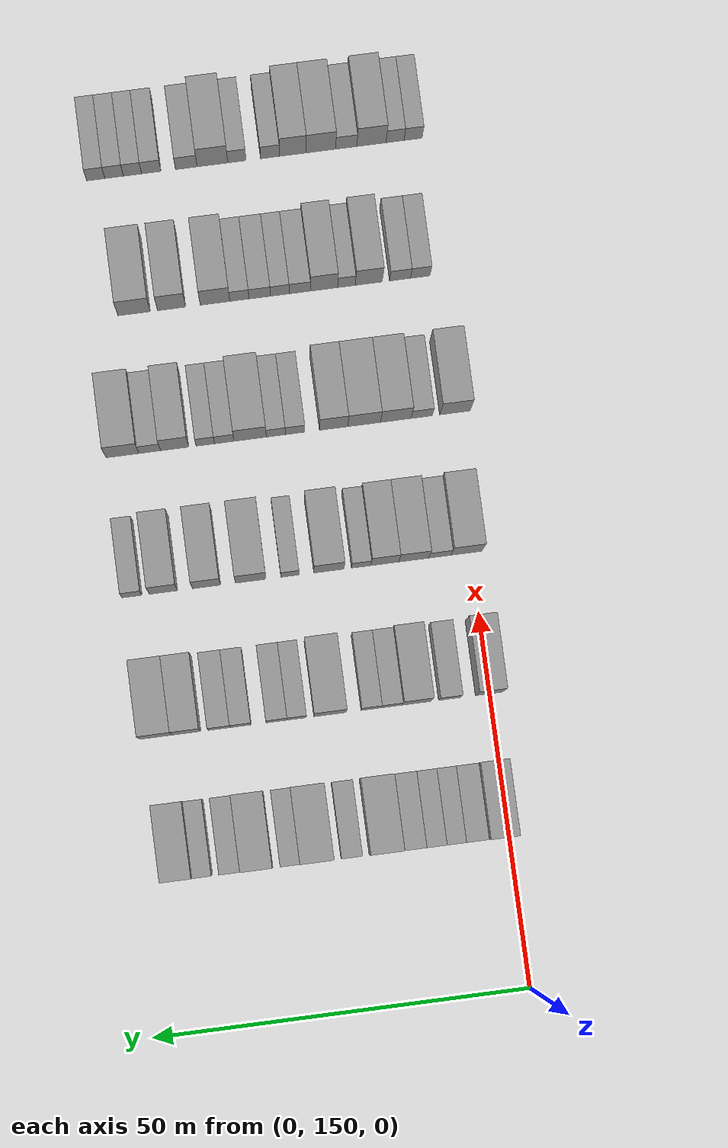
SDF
<sdf version="1.6">
 <world name="default">
  <model name="building_127">
   <static>1</static>
   <pose>25.0000 151.1794 0 0.000000 0.000000 0.000000</pose>
   <link name="link">
    <pose>0 0 4.50 0 0 0</pose>
    <collision name="collision"><geometry><box><size>10.0000 3.8335 9.0000</size></box></geometry></collision>
    <visual name="visual">
     <cast_shadows>0</cast_shadows>
     <geometry><box><size>10.0000 3.8335 9.0000</size></box></geometry>
     <material>
      <script>
       <uri>model://grey_wall/materials/scripts</uri>
       <uri>model://grey_wall/materials/textures</uri>
       <name>vrc/grey_wall</name>
      </script>
     </material>
    </visual>
   </link>
  </model>
  <model name="building_128">
   <static>1</static>
   <pose>25.0000 154.5914 0 0.000000 0.000000 0.000000</pose>
   <link name="link">
    <pose>0 0 3.00 0 0 0</pose>
    <collision name="collision"><geometry><box><size>10.0000 2.9905 6.0000</size></box></geometry></collision>
    <visual name="visual">
     <cast_shadows>0</cast_shadows>
     <geometry><box><size>10.0000 2.9905 6.0000</size></box></geometry>
     <material>
      <script>
       <uri>model://grey_wall/materials/scripts</uri>
       <uri>model://grey_wall/materials/textures</uri>
       <name>vrc/grey_wall</name>
      </script>
     </material>
    </visual>
   </link>
  </model>
  <model name="building_129">
   <static>1</static>
   <pose>25.0000 157.3601 0 0.000000 0.000000 0.000000</pose>
   <link name="link">
    <pose>0 0 3.00 0 0 0</pose>
    <collision name="collision"><geometry><box><size>10.0000 2.5469 6.0000</size></box></geometry></collision>
    <visual name="visual">
     <cast_shadows>0</cast_shadows>
     <geometry><box><size>10.0000 2.5469 6.0000</size></box></geometry>
     <material>
      <script>
       <uri>model://grey_wall/materials/scripts</uri>
       <uri>model://grey_wall/materials/textures</uri>
       <name>vrc/grey_wall</name>
      </script>
     </material>
    </visual>
   </link>
  </model>
  <model name="building_130">
   <static>1</static>
   <pose>25.0000 159.9580 0 0.000000 0.000000 0.000000</pose>
   <link name="link">
    <pose>0 0 3.00 0 0 0</pose>
    <collision name="collision"><geometry><box><size>10.0000 2.6490 6.0000</size></box></geometry></collision>
    <visual name="visual">
     <cast_shadows>0</cast_shadows>
     <geometry><box><size>10.0000 2.6490 6.0000</size></box></geometry>
     <material>
      <script>
       <uri>model://grey_wall/materials/scripts</uri>
       <uri>model://grey_wall/materials/textures</uri>
       <name>vrc/grey_wall</name>
      </script>
     </material>
    </visual>
   </link>
  </model>
  <model name="building_131">
   <static>1</static>
   <pose>25.0000 162.7813 0 0.000000 0.000000 0.000000</pose>
   <link name="link">
    <pose>0 0 3.00 0 0 0</pose>
    <collision name="collision"><geometry><box><size>10.0000 2.9976 6.0000</size></box></geometry></collision>
    <visual name="visual">
     <cast_shadows>0</cast_shadows>
     <geometry><box><size>10.0000 2.9976 6.0000</size></box></geometry>
     <material>
      <script>
       <uri>model://grey_wall/materials/scripts</uri>
       <uri>model://grey_wall/materials/textures</uri>
       <name>vrc/grey_wall</name>
      </script>
     </material>
    </visual>
   </link>
  </model>
  <model name="building_132">
   <static>1</static>
   <pose>25.0000 166.4922 0 0.000000 0.000000 0.000000</pose>
   <link name="link">
    <pose>0 0 4.50 0 0 0</pose>
    <collision name="collision"><geometry><box><size>10.0000 4.4241 9.0000</size></box></geometry></collision>
    <visual name="visual">
     <cast_shadows>0</cast_shadows>
     <geometry><box><size>10.0000 4.4241 9.0000</size></box></geometry>
     <material>
      <script>
       <uri>model://grey_wall/materials/scripts</uri>
       <uri>model://grey_wall/materials/textures</uri>
       <name>vrc/grey_wall</name>
      </script>
     </material>
    </visual>
   </link>
  </model>
  <model name="building_133">
   <static>1</static>
   <pose>25.0000 171.0801 0 0.000000 0.000000 0.000000</pose>
   <link name="link">
    <pose>0 0 3.00 0 0 0</pose>
    <collision name="collision"><geometry><box><size>10.0000 2.7517 6.0000</size></box></geometry></collision>
    <visual name="visual">
     <cast_shadows>0</cast_shadows>
     <geometry><box><size>10.0000 2.7517 6.0000</size></box></geometry>
     <material>
      <script>
       <uri>model://grey_wall/materials/scripts</uri>
       <uri>model://grey_wall/materials/textures</uri>
       <name>vrc/grey_wall</name>
      </script>
     </material>
    </visual>
   </link>
  </model>
  <model name="building_134">
   <static>1</static>
   <pose>25.0000 175.6868 0 0.000000 0.000000 0.000000</pose>
   <link name="link">
    <pose>0 0 4.50 0 0 0</pose>
    <collision name="collision"><geometry><box><size>10.0000 4.4618 9.0000</size></box></geometry></collision>
    <visual name="visual">
     <cast_shadows>0</cast_shadows>
     <geometry><box><size>10.0000 4.4618 9.0000</size></box></geometry>
     <material>
      <script>
       <uri>model://grey_wall/materials/scripts</uri>
       <uri>model://grey_wall/materials/textures</uri>
       <name>vrc/grey_wall</name>
      </script>
     </material>
    </visual>
   </link>
  </model>
  <model name="building_135">
   <static>1</static>
   <pose>25.0000 179.2139 0 0.000000 0.000000 0.000000</pose>
   <link name="link">
    <pose>0 0 3.00 0 0 0</pose>
    <collision name="collision"><geometry><box><size>10.0000 2.5924 6.0000</size></box></geometry></collision>
    <visual name="visual">
     <cast_shadows>0</cast_shadows>
     <geometry><box><size>10.0000 2.5924 6.0000</size></box></geometry>
     <material>
      <script>
       <uri>model://grey_wall/materials/scripts</uri>
       <uri>model://grey_wall/materials/textures</uri>
       <name>vrc/grey_wall</name>
      </script>
     </material>
    </visual>
   </link>
  </model>
  <model name="building_136">
   <static>1</static>
   <pose>25.0000 183.6178 0 0.000000 0.000000 0.000000</pose>
   <link name="link">
    <pose>0 0 4.50 0 0 0</pose>
    <collision name="collision"><geometry><box><size>10.0000 4.2154 9.0000</size></box></geometry></collision>
    <visual name="visual">
     <cast_shadows>0</cast_shadows>
     <geometry><box><size>10.0000 4.2154 9.0000</size></box></geometry>
     <material>
      <script>
       <uri>model://grey_wall/materials/scripts</uri>
       <uri>model://grey_wall/materials/textures</uri>
       <name>vrc/grey_wall</name>
      </script>
     </material>
    </visual>
   </link>
  </model>
  <model name="building_137">
   <static>1</static>
   <pose>25.0000 187.1260 0 0.000000 0.000000 0.000000</pose>
   <link name="link">
    <pose>0 0 3.00 0 0 0</pose>
    <collision name="collision"><geometry><box><size>10.0000 2.8010 6.0000</size></box></geometry></collision>
    <visual name="visual">
     <cast_shadows>0</cast_shadows>
     <geometry><box><size>10.0000 2.8010 6.0000</size></box></geometry>
     <material>
      <script>
       <uri>model://grey_wall/materials/scripts</uri>
       <uri>model://grey_wall/materials/textures</uri>
       <name>vrc/grey_wall</name>
      </script>
     </material>
    </visual>
   </link>
  </model>
  <model name="building_138">
   <static>1</static>
   <pose>25.0000 190.7882 0 0.000000 0.000000 0.000000</pose>
   <link name="link">
    <pose>0 0 3.00 0 0 0</pose>
    <collision name="collision"><geometry><box><size>10.0000 2.5234 6.0000</size></box></geometry></collision>
    <visual name="visual">
     <cast_shadows>0</cast_shadows>
     <geometry><box><size>10.0000 2.5234 6.0000</size></box></geometry>
     <material>
      <script>
       <uri>model://grey_wall/materials/scripts</uri>
       <uri>model://grey_wall/materials/textures</uri>
       <name>vrc/grey_wall</name>
      </script>
     </material>
    </visual>
   </link>
  </model>
  <model name="building_139">
   <static>1</static>
   <pose>25.0000 194.1031 0 0.000000 0.000000 0.000000</pose>
   <link name="link">
    <pose>0 0 4.50 0 0 0</pose>
    <collision name="collision"><geometry><box><size>10.0000 4.1064 9.0000</size></box></geometry></collision>
    <visual name="visual">
     <cast_shadows>0</cast_shadows>
     <geometry><box><size>10.0000 4.1064 9.0000</size></box></geometry>
     <material>
      <script>
       <uri>model://grey_wall/materials/scripts</uri>
       <uri>model://grey_wall/materials/textures</uri>
       <name>vrc/grey_wall</name>
      </script>
     </material>
    </visual>
   </link>
  </model>
  <model name="building_295">
   <static>1</static>
   <pose>44.0000 150.1090 0 0.000000 0.000000 0.000000</pose>
   <link name="link">
    <pose>0 0 4.50 0 0 0</pose>
    <collision name="collision"><geometry><box><size>10.0000 3.6707 9.0000</size></box></geometry></collision>
    <visual name="visual">
     <cast_shadows>0</cast_shadows>
     <geometry><box><size>10.0000 3.6707 9.0000</size></box></geometry>
     <material>
      <script>
       <uri>model://grey_wall/materials/scripts</uri>
       <uri>model://grey_wall/materials/textures</uri>
       <name>vrc/grey_wall</name>
      </script>
     </material>
    </visual>
   </link>
  </model>
  <model name="building_296">
   <static>1</static>
   <pose>44.0000 155.4129 0 0.000000 0.000000 0.000000</pose>
   <link name="link">
    <pose>0 0 3.00 0 0 0</pose>
    <collision name="collision"><geometry><box><size>10.0000 2.9372 6.0000</size></box></geometry></collision>
    <visual name="visual">
     <cast_shadows>0</cast_shadows>
     <geometry><box><size>10.0000 2.9372 6.0000</size></box></geometry>
     <material>
      <script>
       <uri>model://grey_wall/materials/scripts</uri>
       <uri>model://grey_wall/materials/textures</uri>
       <name>vrc/grey_wall</name>
      </script>
     </material>
    </visual>
   </link>
  </model>
  <model name="building_297">
   <static>1</static>
   <pose>44.0000 159.8414 0 0.000000 0.000000 0.000000</pose>
   <link name="link">
    <pose>0 0 4.50 0 0 0</pose>
    <collision name="collision"><geometry><box><size>10.0000 3.9198 9.0000</size></box></geometry></collision>
    <visual name="visual">
     <cast_shadows>0</cast_shadows>
     <geometry><box><size>10.0000 3.9198 9.0000</size></box></geometry>
     <material>
      <script>
       <uri>model://grey_wall/materials/scripts</uri>
       <uri>model://grey_wall/materials/textures</uri>
       <name>vrc/grey_wall</name>
      </script>
     </material>
    </visual>
   </link>
  </model>
  <model name="building_298">
   <static>1</static>
   <pose>44.0000 163.1957 0 0.000000 0.000000 0.000000</pose>
   <link name="link">
    <pose>0 0 3.00 0 0 0</pose>
    <collision name="collision"><geometry><box><size>10.0000 2.7887 6.0000</size></box></geometry></collision>
    <visual name="visual">
     <cast_shadows>0</cast_shadows>
     <geometry><box><size>10.0000 2.7887 6.0000</size></box></geometry>
     <material>
      <script>
       <uri>model://grey_wall/materials/scripts</uri>
       <uri>model://grey_wall/materials/textures</uri>
       <name>vrc/grey_wall</name>
      </script>
     </material>
    </visual>
   </link>
  </model>
  <model name="building_299">
   <static>1</static>
   <pose>44.0000 165.9279 0 0.000000 0.000000 0.000000</pose>
   <link name="link">
    <pose>0 0 3.00 0 0 0</pose>
    <collision name="collision"><geometry><box><size>10.0000 2.6757 6.0000</size></box></geometry></collision>
    <visual name="visual">
     <cast_shadows>0</cast_shadows>
     <geometry><box><size>10.0000 2.6757 6.0000</size></box></geometry>
     <material>
      <script>
       <uri>model://grey_wall/materials/scripts</uri>
       <uri>model://grey_wall/materials/textures</uri>
       <name>vrc/grey_wall</name>
      </script>
     </material>
    </visual>
   </link>
  </model>
  <model name="building_300">
   <static>1</static>
   <pose>44.0000 171.4238 0 0.000000 0.000000 0.000000</pose>
   <link name="link">
    <pose>0 0 4.50 0 0 0</pose>
    <collision name="collision"><geometry><box><size>10.0000 4.3161 9.0000</size></box></geometry></collision>
    <visual name="visual">
     <cast_shadows>0</cast_shadows>
     <geometry><box><size>10.0000 4.3161 9.0000</size></box></geometry>
     <material>
      <script>
       <uri>model://grey_wall/materials/scripts</uri>
       <uri>model://grey_wall/materials/textures</uri>
       <name>vrc/grey_wall</name>
      </script>
     </material>
    </visual>
   </link>
  </model>
  <model name="building_301">
   <static>1</static>
   <pose>44.0000 175.8638 0 0.000000 0.000000 0.000000</pose>
   <link name="link">
    <pose>0 0 3.00 0 0 0</pose>
    <collision name="collision"><geometry><box><size>10.0000 2.5638 6.0000</size></box></geometry></collision>
    <visual name="visual">
     <cast_shadows>0</cast_shadows>
     <geometry><box><size>10.0000 2.5638 6.0000</size></box></geometry>
     <material>
      <script>
       <uri>model://grey_wall/materials/scripts</uri>
       <uri>model://grey_wall/materials/textures</uri>
       <name>vrc/grey_wall</name>
      </script>
     </material>
    </visual>
   </link>
  </model>
  <model name="building_302">
   <static>1</static>
   <pose>44.0000 178.5440 0 0.000000 0.000000 0.000000</pose>
   <link name="link">
    <pose>0 0 3.00 0 0 0</pose>
    <collision name="collision"><geometry><box><size>10.0000 2.7967 6.0000</size></box></geometry></collision>
    <visual name="visual">
     <cast_shadows>0</cast_shadows>
     <geometry><box><size>10.0000 2.7967 6.0000</size></box></geometry>
     <material>
      <script>
       <uri>model://grey_wall/materials/scripts</uri>
       <uri>model://grey_wall/materials/textures</uri>
       <name>vrc/grey_wall</name>
      </script>
     </material>
    </visual>
   </link>
  </model>
  <model name="building_303">
   <static>1</static>
   <pose>44.0000 183.3404 0 0.000000 0.000000 0.000000</pose>
   <link name="link">
    <pose>0 0 3.00 0 0 0</pose>
    <collision name="collision"><geometry><box><size>10.0000 2.7961 6.0000</size></box></geometry></collision>
    <visual name="visual">
     <cast_shadows>0</cast_shadows>
     <geometry><box><size>10.0000 2.7961 6.0000</size></box></geometry>
     <material>
      <script>
       <uri>model://grey_wall/materials/scripts</uri>
       <uri>model://grey_wall/materials/textures</uri>
       <name>vrc/grey_wall</name>
      </script>
     </material>
    </visual>
   </link>
  </model>
  <model name="building_304">
   <static>1</static>
   <pose>44.0000 186.2108 0 0.000000 0.000000 0.000000</pose>
   <link name="link">
    <pose>0 0 3.00 0 0 0</pose>
    <collision name="collision"><geometry><box><size>10.0000 2.9447 6.0000</size></box></geometry></collision>
    <visual name="visual">
     <cast_shadows>0</cast_shadows>
     <geometry><box><size>10.0000 2.9447 6.0000</size></box></geometry>
     <material>
      <script>
       <uri>model://grey_wall/materials/scripts</uri>
       <uri>model://grey_wall/materials/textures</uri>
       <name>vrc/grey_wall</name>
      </script>
     </material>
    </visual>
   </link>
  </model>
  <model name="building_305">
   <static>1</static>
   <pose>44.0000 190.5857 0 0.000000 0.000000 0.000000</pose>
   <link name="link">
    <pose>0 0 4.50 0 0 0</pose>
    <collision name="collision"><geometry><box><size>10.0000 3.8052 9.0000</size></box></geometry></collision>
    <visual name="visual">
     <cast_shadows>0</cast_shadows>
     <geometry><box><size>10.0000 3.8052 9.0000</size></box></geometry>
     <material>
      <script>
       <uri>model://grey_wall/materials/scripts</uri>
       <uri>model://grey_wall/materials/textures</uri>
       <name>vrc/grey_wall</name>
      </script>
     </material>
    </visual>
   </link>
  </model>
  <model name="building_306">
   <static>1</static>
   <pose>44.0000 194.6431 0 0.000000 0.000000 0.000000</pose>
   <link name="link">
    <pose>0 0 4.50 0 0 0</pose>
    <collision name="collision"><geometry><box><size>10.0000 4.3095 9.0000</size></box></geometry></collision>
    <visual name="visual">
     <cast_shadows>0</cast_shadows>
     <geometry><box><size>10.0000 4.3095 9.0000</size></box></geometry>
     <material>
      <script>
       <uri>model://grey_wall/materials/scripts</uri>
       <uri>model://grey_wall/materials/textures</uri>
       <name>vrc/grey_wall</name>
      </script>
     </material>
    </visual>
   </link>
  </model>
  <model name="building_475">
   <static>1</static>
   <pose>63.0000 150.5492 0 0.000000 0.000000 0.000000</pose>
   <link name="link">
    <pose>0 0 4.50 0 0 0</pose>
    <collision name="collision"><geometry><box><size>10.0000 4.2063 9.0000</size></box></geometry></collision>
    <visual name="visual">
     <cast_shadows>0</cast_shadows>
     <geometry><box><size>10.0000 4.2063 9.0000</size></box></geometry>
     <material>
      <script>
       <uri>model://grey_wall/materials/scripts</uri>
       <uri>model://grey_wall/materials/textures</uri>
       <name>vrc/grey_wall</name>
      </script>
     </material>
    </visual>
   </link>
  </model>
  <model name="building_476">
   <static>1</static>
   <pose>63.0000 154.1515 0 0.000000 0.000000 0.000000</pose>
   <link name="link">
    <pose>0 0 3.00 0 0 0</pose>
    <collision name="collision"><geometry><box><size>10.0000 2.9981 6.0000</size></box></geometry></collision>
    <visual name="visual">
     <cast_shadows>0</cast_shadows>
     <geometry><box><size>10.0000 2.9981 6.0000</size></box></geometry>
     <material>
      <script>
       <uri>model://grey_wall/materials/scripts</uri>
       <uri>model://grey_wall/materials/textures</uri>
       <name>vrc/grey_wall</name>
      </script>
     </material>
    </visual>
   </link>
  </model>
  <model name="building_477">
   <static>1</static>
   <pose>63.0000 157.6719 0 0.000000 0.000000 0.000000</pose>
   <link name="link">
    <pose>0 0 4.50 0 0 0</pose>
    <collision name="collision"><geometry><box><size>10.0000 4.0427 9.0000</size></box></geometry></collision>
    <visual name="visual">
     <cast_shadows>0</cast_shadows>
     <geometry><box><size>10.0000 4.0427 9.0000</size></box></geometry>
     <material>
      <script>
       <uri>model://grey_wall/materials/scripts</uri>
       <uri>model://grey_wall/materials/textures</uri>
       <name>vrc/grey_wall</name>
      </script>
     </material>
    </visual>
   </link>
  </model>
  <model name="building_478">
   <static>1</static>
   <pose>63.0000 161.5643 0 0.000000 0.000000 0.000000</pose>
   <link name="link">
    <pose>0 0 4.50 0 0 0</pose>
    <collision name="collision"><geometry><box><size>10.0000 3.7421 9.0000</size></box></geometry></collision>
    <visual name="visual">
     <cast_shadows>0</cast_shadows>
     <geometry><box><size>10.0000 3.7421 9.0000</size></box></geometry>
     <material>
      <script>
       <uri>model://grey_wall/materials/scripts</uri>
       <uri>model://grey_wall/materials/textures</uri>
       <name>vrc/grey_wall</name>
      </script>
     </material>
    </visual>
   </link>
  </model>
  <model name="building_479">
   <static>1</static>
   <pose>63.0000 164.7354 0 0.000000 0.000000 0.000000</pose>
   <link name="link">
    <pose>0 0 3.00 0 0 0</pose>
    <collision name="collision"><geometry><box><size>10.0000 2.6002 6.0000</size></box></geometry></collision>
    <visual name="visual">
     <cast_shadows>0</cast_shadows>
     <geometry><box><size>10.0000 2.6002 6.0000</size></box></geometry>
     <material>
      <script>
       <uri>model://grey_wall/materials/scripts</uri>
       <uri>model://grey_wall/materials/textures</uri>
       <name>vrc/grey_wall</name>
      </script>
     </material>
    </visual>
   </link>
  </model>
  <model name="building_480">
   <static>1</static>
   <pose>63.0000 169.0671 0 0.000000 0.000000 0.000000</pose>
   <link name="link">
    <pose>0 0 4.50 0 0 0</pose>
    <collision name="collision"><geometry><box><size>10.0000 4.0632 9.0000</size></box></geometry></collision>
    <visual name="visual">
     <cast_shadows>0</cast_shadows>
     <geometry><box><size>10.0000 4.0632 9.0000</size></box></geometry>
     <material>
      <script>
       <uri>model://grey_wall/materials/scripts</uri>
       <uri>model://grey_wall/materials/textures</uri>
       <name>vrc/grey_wall</name>
      </script>
     </material>
    </visual>
   </link>
  </model>
  <model name="building_481">
   <static>1</static>
   <pose>63.0000 174.3144 0 0.000000 0.000000 0.000000</pose>
   <link name="link">
    <pose>0 0 3.00 0 0 0</pose>
    <collision name="collision"><geometry><box><size>10.0000 2.4313 6.0000</size></box></geometry></collision>
    <visual name="visual">
     <cast_shadows>0</cast_shadows>
     <geometry><box><size>10.0000 2.4313 6.0000</size></box></geometry>
     <material>
      <script>
       <uri>model://grey_wall/materials/scripts</uri>
       <uri>model://grey_wall/materials/textures</uri>
       <name>vrc/grey_wall</name>
      </script>
     </material>
    </visual>
   </link>
  </model>
  <model name="building_482">
   <static>1</static>
   <pose>63.0000 179.5796 0 0.000000 0.000000 0.000000</pose>
   <link name="link">
    <pose>0 0 4.50 0 0 0</pose>
    <collision name="collision"><geometry><box><size>10.0000 4.0991 9.0000</size></box></geometry></collision>
    <visual name="visual">
     <cast_shadows>0</cast_shadows>
     <geometry><box><size>10.0000 4.0991 9.0000</size></box></geometry>
     <material>
      <script>
       <uri>model://grey_wall/materials/scripts</uri>
       <uri>model://grey_wall/materials/textures</uri>
       <name>vrc/grey_wall</name>
      </script>
     </material>
    </visual>
   </link>
  </model>
  <model name="building_483">
   <static>1</static>
   <pose>63.0000 185.5195 0 0.000000 0.000000 0.000000</pose>
   <link name="link">
    <pose>0 0 4.50 0 0 0</pose>
    <collision name="collision"><geometry><box><size>10.0000 3.7808 9.0000</size></box></geometry></collision>
    <visual name="visual">
     <cast_shadows>0</cast_shadows>
     <geometry><box><size>10.0000 3.7808 9.0000</size></box></geometry>
     <material>
      <script>
       <uri>model://grey_wall/materials/scripts</uri>
       <uri>model://grey_wall/materials/textures</uri>
       <name>vrc/grey_wall</name>
      </script>
     </material>
    </visual>
   </link>
  </model>
  <model name="building_484">
   <static>1</static>
   <pose>63.0000 191.2992 0 0.000000 0.000000 0.000000</pose>
   <link name="link">
    <pose>0 0 4.50 0 0 0</pose>
    <collision name="collision"><geometry><box><size>10.0000 3.7786 9.0000</size></box></geometry></collision>
    <visual name="visual">
     <cast_shadows>0</cast_shadows>
     <geometry><box><size>10.0000 3.7786 9.0000</size></box></geometry>
     <material>
      <script>
       <uri>model://grey_wall/materials/scripts</uri>
       <uri>model://grey_wall/materials/textures</uri>
       <name>vrc/grey_wall</name>
      </script>
     </material>
    </visual>
   </link>
  </model>
  <model name="building_485">
   <static>1</static>
   <pose>63.0000 195.5149 0 0.000000 0.000000 0.000000</pose>
   <link name="link">
    <pose>0 0 3.00 0 0 0</pose>
    <collision name="collision"><geometry><box><size>10.0000 2.6527 6.0000</size></box></geometry></collision>
    <visual name="visual">
     <cast_shadows>0</cast_shadows>
     <geometry><box><size>10.0000 2.6527 6.0000</size></box></geometry>
     <material>
      <script>
       <uri>model://grey_wall/materials/scripts</uri>
       <uri>model://grey_wall/materials/textures</uri>
       <name>vrc/grey_wall</name>
      </script>
     </material>
    </visual>
   </link>
  </model>
  <model name="building_635">
   <static>1</static>
   <pose>82.0000 149.5076 0 0.000000 0.000000 0.000000</pose>
   <link name="link">
    <pose>0 0 4.50 0 0 0</pose>
    <collision name="collision"><geometry><box><size>10.0000 4.1250 9.0000</size></box></geometry></collision>
    <visual name="visual">
     <cast_shadows>0</cast_shadows>
     <geometry><box><size>10.0000 4.1250 9.0000</size></box></geometry>
     <material>
      <script>
       <uri>model://grey_wall/materials/scripts</uri>
       <uri>model://grey_wall/materials/textures</uri>
       <name>vrc/grey_wall</name>
      </script>
     </material>
    </visual>
   </link>
  </model>
  <model name="building_636">
   <static>1</static>
   <pose>82.0000 154.0002 0 0.000000 0.000000 0.000000</pose>
   <link name="link">
    <pose>0 0 3.00 0 0 0</pose>
    <collision name="collision"><geometry><box><size>10.0000 2.8602 6.0000</size></box></geometry></collision>
    <visual name="visual">
     <cast_shadows>0</cast_shadows>
     <geometry><box><size>10.0000 2.8602 6.0000</size></box></geometry>
     <material>
      <script>
       <uri>model://grey_wall/materials/scripts</uri>
       <uri>model://grey_wall/materials/textures</uri>
       <name>vrc/grey_wall</name>
      </script>
     </material>
    </visual>
   </link>
  </model>
  <model name="building_637">
   <static>1</static>
   <pose>82.0000 157.5140 0 0.000000 0.000000 0.000000</pose>
   <link name="link">
    <pose>0 0 4.50 0 0 0</pose>
    <collision name="collision"><geometry><box><size>10.0000 4.1674 9.0000</size></box></geometry></collision>
    <visual name="visual">
     <cast_shadows>0</cast_shadows>
     <geometry><box><size>10.0000 4.1674 9.0000</size></box></geometry>
     <material>
      <script>
       <uri>model://grey_wall/materials/scripts</uri>
       <uri>model://grey_wall/materials/textures</uri>
       <name>vrc/grey_wall</name>
      </script>
     </material>
    </visual>
   </link>
  </model>
  <model name="building_638">
   <static>1</static>
   <pose>82.0000 161.8112 0 0.000000 0.000000 0.000000</pose>
   <link name="link">
    <pose>0 0 4.50 0 0 0</pose>
    <collision name="collision"><geometry><box><size>10.0000 4.4271 9.0000</size></box></geometry></collision>
    <visual name="visual">
     <cast_shadows>0</cast_shadows>
     <geometry><box><size>10.0000 4.4271 9.0000</size></box></geometry>
     <material>
      <script>
       <uri>model://grey_wall/materials/scripts</uri>
       <uri>model://grey_wall/materials/textures</uri>
       <name>vrc/grey_wall</name>
      </script>
     </material>
    </visual>
   </link>
  </model>
  <model name="building_639">
   <static>1</static>
   <pose>82.0000 165.9381 0 0.000000 0.000000 0.000000</pose>
   <link name="link">
    <pose>0 0 4.50 0 0 0</pose>
    <collision name="collision"><geometry><box><size>10.0000 3.8267 9.0000</size></box></geometry></collision>
    <visual name="visual">
     <cast_shadows>0</cast_shadows>
     <geometry><box><size>10.0000 3.8267 9.0000</size></box></geometry>
     <material>
      <script>
       <uri>model://grey_wall/materials/scripts</uri>
       <uri>model://grey_wall/materials/textures</uri>
       <name>vrc/grey_wall</name>
      </script>
     </material>
    </visual>
   </link>
  </model>
  <model name="building_640">
   <static>1</static>
   <pose>82.0000 171.1611 0 0.000000 0.000000 0.000000</pose>
   <link name="link">
    <pose>0 0 3.00 0 0 0</pose>
    <collision name="collision"><geometry><box><size>10.0000 2.6193 6.0000</size></box></geometry></collision>
    <visual name="visual">
     <cast_shadows>0</cast_shadows>
     <geometry><box><size>10.0000 2.6193 6.0000</size></box></geometry>
     <material>
      <script>
       <uri>model://grey_wall/materials/scripts</uri>
       <uri>model://grey_wall/materials/textures</uri>
       <name>vrc/grey_wall</name>
      </script>
     </material>
    </visual>
   </link>
  </model>
  <model name="building_641">
   <static>1</static>
   <pose>82.0000 173.7606 0 0.000000 0.000000 0.000000</pose>
   <link name="link">
    <pose>0 0 3.00 0 0 0</pose>
    <collision name="collision"><geometry><box><size>10.0000 2.5797 6.0000</size></box></geometry></collision>
    <visual name="visual">
     <cast_shadows>0</cast_shadows>
     <geometry><box><size>10.0000 2.5797 6.0000</size></box></geometry>
     <material>
      <script>
       <uri>model://grey_wall/materials/scripts</uri>
       <uri>model://grey_wall/materials/textures</uri>
       <name>vrc/grey_wall</name>
      </script>
     </material>
    </visual>
   </link>
  </model>
  <model name="building_642">
   <static>1</static>
   <pose>82.0000 177.2313 0 0.000000 0.000000 0.000000</pose>
   <link name="link">
    <pose>0 0 4.50 0 0 0</pose>
    <collision name="collision"><geometry><box><size>10.0000 4.3617 9.0000</size></box></geometry></collision>
    <visual name="visual">
     <cast_shadows>0</cast_shadows>
     <geometry><box><size>10.0000 4.3617 9.0000</size></box></geometry>
     <material>
      <script>
       <uri>model://grey_wall/materials/scripts</uri>
       <uri>model://grey_wall/materials/textures</uri>
       <name>vrc/grey_wall</name>
      </script>
     </material>
    </visual>
   </link>
  </model>
  <model name="building_643">
   <static>1</static>
   <pose>82.0000 180.7251 0 0.000000 0.000000 0.000000</pose>
   <link name="link">
    <pose>0 0 3.00 0 0 0</pose>
    <collision name="collision"><geometry><box><size>10.0000 2.6259 6.0000</size></box></geometry></collision>
    <visual name="visual">
     <cast_shadows>0</cast_shadows>
     <geometry><box><size>10.0000 2.6259 6.0000</size></box></geometry>
     <material>
      <script>
       <uri>model://grey_wall/materials/scripts</uri>
       <uri>model://grey_wall/materials/textures</uri>
       <name>vrc/grey_wall</name>
      </script>
     </material>
    </visual>
   </link>
  </model>
  <model name="building_644">
   <static>1</static>
   <pose>82.0000 183.2835 0 0.000000 0.000000 0.000000</pose>
   <link name="link">
    <pose>0 0 3.00 0 0 0</pose>
    <collision name="collision"><geometry><box><size>10.0000 2.4908 6.0000</size></box></geometry></collision>
    <visual name="visual">
     <cast_shadows>0</cast_shadows>
     <geometry><box><size>10.0000 2.4908 6.0000</size></box></geometry>
     <material>
      <script>
       <uri>model://grey_wall/materials/scripts</uri>
       <uri>model://grey_wall/materials/textures</uri>
       <name>vrc/grey_wall</name>
      </script>
     </material>
    </visual>
   </link>
  </model>
  <model name="building_645">
   <static>1</static>
   <pose>82.0000 187.4306 0 0.000000 0.000000 0.000000</pose>
   <link name="link">
    <pose>0 0 4.50 0 0 0</pose>
    <collision name="collision"><geometry><box><size>10.0000 3.8035 9.0000</size></box></geometry></collision>
    <visual name="visual">
     <cast_shadows>0</cast_shadows>
     <geometry><box><size>10.0000 3.8035 9.0000</size></box></geometry>
     <material>
      <script>
       <uri>model://grey_wall/materials/scripts</uri>
       <uri>model://grey_wall/materials/textures</uri>
       <name>vrc/grey_wall</name>
      </script>
     </material>
    </visual>
   </link>
  </model>
  <model name="building_646">
   <static>1</static>
   <pose>82.0000 190.7952 0 0.000000 0.000000 0.000000</pose>
   <link name="link">
    <pose>0 0 3.00 0 0 0</pose>
    <collision name="collision"><geometry><box><size>10.0000 2.9256 6.0000</size></box></geometry></collision>
    <visual name="visual">
     <cast_shadows>0</cast_shadows>
     <geometry><box><size>10.0000 2.9256 6.0000</size></box></geometry>
     <material>
      <script>
       <uri>model://grey_wall/materials/scripts</uri>
       <uri>model://grey_wall/materials/textures</uri>
       <name>vrc/grey_wall</name>
      </script>
     </material>
    </visual>
   </link>
  </model>
  <model name="building_647">
   <static>1</static>
   <pose>82.0000 194.4828 0 0.000000 0.000000 0.000000</pose>
   <link name="link">
    <pose>0 0 4.50 0 0 0</pose>
    <collision name="collision"><geometry><box><size>10.0000 4.4496 9.0000</size></box></geometry></collision>
    <visual name="visual">
     <cast_shadows>0</cast_shadows>
     <geometry><box><size>10.0000 4.4496 9.0000</size></box></geometry>
     <material>
      <script>
       <uri>model://grey_wall/materials/scripts</uri>
       <uri>model://grey_wall/materials/textures</uri>
       <name>vrc/grey_wall</name>
      </script>
     </material>
    </visual>
   </link>
  </model>
  <model name="building_818">
   <static>1</static>
   <pose>101.0000 151.6326 0 0.000000 0.000000 0.000000</pose>
   <link name="link">
    <pose>0 0 3.00 0 0 0</pose>
    <collision name="collision"><geometry><box><size>10.0000 2.6538 6.0000</size></box></geometry></collision>
    <visual name="visual">
     <cast_shadows>0</cast_shadows>
     <geometry><box><size>10.0000 2.6538 6.0000</size></box></geometry>
     <material>
      <script>
       <uri>model://grey_wall/materials/scripts</uri>
       <uri>model://grey_wall/materials/textures</uri>
       <name>vrc/grey_wall</name>
      </script>
     </material>
    </visual>
   </link>
  </model>
  <model name="building_819">
   <static>1</static>
   <pose>101.0000 154.3875 0 0.000000 0.000000 0.000000</pose>
   <link name="link">
    <pose>0 0 3.00 0 0 0</pose>
    <collision name="collision"><geometry><box><size>10.0000 2.8560 6.0000</size></box></geometry></collision>
    <visual name="visual">
     <cast_shadows>0</cast_shadows>
     <geometry><box><size>10.0000 2.8560 6.0000</size></box></geometry>
     <material>
      <script>
       <uri>model://grey_wall/materials/scripts</uri>
       <uri>model://grey_wall/materials/textures</uri>
       <name>vrc/grey_wall</name>
      </script>
     </material>
    </visual>
   </link>
  </model>
  <model name="building_820">
   <static>1</static>
   <pose>101.0000 158.6538 0 0.000000 0.000000 0.000000</pose>
   <link name="link">
    <pose>0 0 4.50 0 0 0</pose>
    <collision name="collision"><geometry><box><size>10.0000 3.6766 9.0000</size></box></geometry></collision>
    <visual name="visual">
     <cast_shadows>0</cast_shadows>
     <geometry><box><size>10.0000 3.6766 9.0000</size></box></geometry>
     <material>
      <script>
       <uri>model://grey_wall/materials/scripts</uri>
       <uri>model://grey_wall/materials/textures</uri>
       <name>vrc/grey_wall</name>
      </script>
     </material>
    </visual>
   </link>
  </model>
  <model name="building_821">
   <static>1</static>
   <pose>101.0000 161.6958 0 0.000000 0.000000 0.000000</pose>
   <link name="link">
    <pose>0 0 3.00 0 0 0</pose>
    <collision name="collision"><geometry><box><size>10.0000 2.4074 6.0000</size></box></geometry></collision>
    <visual name="visual">
     <cast_shadows>0</cast_shadows>
     <geometry><box><size>10.0000 2.4074 6.0000</size></box></geometry>
     <material>
      <script>
       <uri>model://grey_wall/materials/scripts</uri>
       <uri>model://grey_wall/materials/textures</uri>
       <name>vrc/grey_wall</name>
      </script>
     </material>
    </visual>
   </link>
  </model>
  <model name="building_822">
   <static>1</static>
   <pose>101.0000 164.7537 0 0.000000 0.000000 0.000000</pose>
   <link name="link">
    <pose>0 0 4.50 0 0 0</pose>
    <collision name="collision"><geometry><box><size>10.0000 3.7084 9.0000</size></box></geometry></collision>
    <visual name="visual">
     <cast_shadows>0</cast_shadows>
     <geometry><box><size>10.0000 3.7084 9.0000</size></box></geometry>
     <material>
      <script>
       <uri>model://grey_wall/materials/scripts</uri>
       <uri>model://grey_wall/materials/textures</uri>
       <name>vrc/grey_wall</name>
      </script>
     </material>
    </visual>
   </link>
  </model>
  <model name="building_823">
   <static>1</static>
   <pose>101.0000 168.0420 0 0.000000 0.000000 0.000000</pose>
   <link name="link">
    <pose>0 0 3.00 0 0 0</pose>
    <collision name="collision"><geometry><box><size>10.0000 2.8681 6.0000</size></box></geometry></collision>
    <visual name="visual">
     <cast_shadows>0</cast_shadows>
     <geometry><box><size>10.0000 2.8681 6.0000</size></box></geometry>
     <material>
      <script>
       <uri>model://grey_wall/materials/scripts</uri>
       <uri>model://grey_wall/materials/textures</uri>
       <name>vrc/grey_wall</name>
      </script>
     </material>
    </visual>
   </link>
  </model>
  <model name="building_824">
   <static>1</static>
   <pose>101.0000 170.7562 0 0.000000 0.000000 0.000000</pose>
   <link name="link">
    <pose>0 0 3.00 0 0 0</pose>
    <collision name="collision"><geometry><box><size>10.0000 2.5604 6.0000</size></box></geometry></collision>
    <visual name="visual">
     <cast_shadows>0</cast_shadows>
     <geometry><box><size>10.0000 2.5604 6.0000</size></box></geometry>
     <material>
      <script>
       <uri>model://grey_wall/materials/scripts</uri>
       <uri>model://grey_wall/materials/textures</uri>
       <name>vrc/grey_wall</name>
      </script>
     </material>
    </visual>
   </link>
  </model>
  <model name="building_825">
   <static>1</static>
   <pose>101.0000 173.4976 0 0.000000 0.000000 0.000000</pose>
   <link name="link">
    <pose>0 0 3.00 0 0 0</pose>
    <collision name="collision"><geometry><box><size>10.0000 2.9222 6.0000</size></box></geometry></collision>
    <visual name="visual">
     <cast_shadows>0</cast_shadows>
     <geometry><box><size>10.0000 2.9222 6.0000</size></box></geometry>
     <material>
      <script>
       <uri>model://grey_wall/materials/scripts</uri>
       <uri>model://grey_wall/materials/textures</uri>
       <name>vrc/grey_wall</name>
      </script>
     </material>
    </visual>
   </link>
  </model>
  <model name="building_826">
   <static>1</static>
   <pose>101.0000 176.2626 0 0.000000 0.000000 0.000000</pose>
   <link name="link">
    <pose>0 0 3.00 0 0 0</pose>
    <collision name="collision"><geometry><box><size>10.0000 2.6078 6.0000</size></box></geometry></collision>
    <visual name="visual">
     <cast_shadows>0</cast_shadows>
     <geometry><box><size>10.0000 2.6078 6.0000</size></box></geometry>
     <material>
      <script>
       <uri>model://grey_wall/materials/scripts</uri>
       <uri>model://grey_wall/materials/textures</uri>
       <name>vrc/grey_wall</name>
      </script>
     </material>
    </visual>
   </link>
  </model>
  <model name="building_827">
   <static>1</static>
   <pose>101.0000 179.5706 0 0.000000 0.000000 0.000000</pose>
   <link name="link">
    <pose>0 0 4.50 0 0 0</pose>
    <collision name="collision"><geometry><box><size>10.0000 4.0083 9.0000</size></box></geometry></collision>
    <visual name="visual">
     <cast_shadows>0</cast_shadows>
     <geometry><box><size>10.0000 4.0083 9.0000</size></box></geometry>
     <material>
      <script>
       <uri>model://grey_wall/materials/scripts</uri>
       <uri>model://grey_wall/materials/textures</uri>
       <name>vrc/grey_wall</name>
      </script>
     </material>
    </visual>
   </link>
  </model>
  <model name="building_828">
   <static>1</static>
   <pose>101.0000 185.4776 0 0.000000 0.000000 0.000000</pose>
   <link name="link">
    <pose>0 0 4.50 0 0 0</pose>
    <collision name="collision"><geometry><box><size>10.0000 3.8058 9.0000</size></box></geometry></collision>
    <visual name="visual">
     <cast_shadows>0</cast_shadows>
     <geometry><box><size>10.0000 3.8058 9.0000</size></box></geometry>
     <material>
      <script>
       <uri>model://grey_wall/materials/scripts</uri>
       <uri>model://grey_wall/materials/textures</uri>
       <name>vrc/grey_wall</name>
      </script>
     </material>
    </visual>
   </link>
  </model>
  <model name="building_829">
   <static>1</static>
   <pose>101.0000 190.5779 0 0.000000 0.000000 0.000000</pose>
   <link name="link">
    <pose>0 0 4.50 0 0 0</pose>
    <collision name="collision"><geometry><box><size>10.0000 4.3947 9.0000</size></box></geometry></collision>
    <visual name="visual">
     <cast_shadows>0</cast_shadows>
     <geometry><box><size>10.0000 4.3947 9.0000</size></box></geometry>
     <material>
      <script>
       <uri>model://grey_wall/materials/scripts</uri>
       <uri>model://grey_wall/materials/textures</uri>
       <name>vrc/grey_wall</name>
      </script>
     </material>
    </visual>
   </link>
  </model>
  <model name="building_991">
   <static>1</static>
   <pose>120.0000 150.0483 0 0.000000 0.000000 0.000000</pose>
   <link name="link">
    <pose>0 0 3.00 0 0 0</pose>
    <collision name="collision"><geometry><box><size>10.0000 2.4720 6.0000</size></box></geometry></collision>
    <visual name="visual">
     <cast_shadows>0</cast_shadows>
     <geometry><box><size>10.0000 2.4720 6.0000</size></box></geometry>
     <material>
      <script>
       <uri>model://grey_wall/materials/scripts</uri>
       <uri>model://grey_wall/materials/textures</uri>
       <name>vrc/grey_wall</name>
      </script>
     </material>
    </visual>
   </link>
  </model>
  <model name="building_992">
   <static>1</static>
   <pose>120.0000 152.5184 0 0.000000 0.000000 0.000000</pose>
   <link name="link">
    <pose>0 0 3.00 0 0 0</pose>
    <collision name="collision"><geometry><box><size>10.0000 2.4682 6.0000</size></box></geometry></collision>
    <visual name="visual">
     <cast_shadows>0</cast_shadows>
     <geometry><box><size>10.0000 2.4682 6.0000</size></box></geometry>
     <material>
      <script>
       <uri>model://grey_wall/materials/scripts</uri>
       <uri>model://grey_wall/materials/textures</uri>
       <name>vrc/grey_wall</name>
      </script>
     </material>
    </visual>
   </link>
  </model>
  <model name="building_993">
   <static>1</static>
   <pose>120.0000 155.7504 0 0.000000 0.000000 0.000000</pose>
   <link name="link">
    <pose>0 0 4.50 0 0 0</pose>
    <collision name="collision"><geometry><box><size>10.0000 3.9957 9.0000</size></box></geometry></collision>
    <visual name="visual">
     <cast_shadows>0</cast_shadows>
     <geometry><box><size>10.0000 3.9957 9.0000</size></box></geometry>
     <material>
      <script>
       <uri>model://grey_wall/materials/scripts</uri>
       <uri>model://grey_wall/materials/textures</uri>
       <name>vrc/grey_wall</name>
      </script>
     </material>
    </visual>
   </link>
  </model>
  <model name="building_994">
   <static>1</static>
   <pose>120.0000 159.2032 0 0.000000 0.000000 0.000000</pose>
   <link name="link">
    <pose>0 0 3.00 0 0 0</pose>
    <collision name="collision"><geometry><box><size>10.0000 2.9100 6.0000</size></box></geometry></collision>
    <visual name="visual">
     <cast_shadows>0</cast_shadows>
     <geometry><box><size>10.0000 2.9100 6.0000</size></box></geometry>
     <material>
      <script>
       <uri>model://grey_wall/materials/scripts</uri>
       <uri>model://grey_wall/materials/textures</uri>
       <name>vrc/grey_wall</name>
      </script>
     </material>
    </visual>
   </link>
  </model>
  <model name="building_995">
   <static>1</static>
   <pose>120.0000 162.6747 0 0.000000 0.000000 0.000000</pose>
   <link name="link">
    <pose>0 0 4.50 0 0 0</pose>
    <collision name="collision"><geometry><box><size>10.0000 4.0329 9.0000</size></box></geometry></collision>
    <visual name="visual">
     <cast_shadows>0</cast_shadows>
     <geometry><box><size>10.0000 4.0329 9.0000</size></box></geometry>
     <material>
      <script>
       <uri>model://grey_wall/materials/scripts</uri>
       <uri>model://grey_wall/materials/textures</uri>
       <name>vrc/grey_wall</name>
      </script>
     </material>
    </visual>
   </link>
  </model>
  <model name="building_996">
   <static>1</static>
   <pose>120.0000 166.5208 0 0.000000 0.000000 0.000000</pose>
   <link name="link">
    <pose>0 0 4.50 0 0 0</pose>
    <collision name="collision"><geometry><box><size>10.0000 3.6595 9.0000</size></box></geometry></collision>
    <visual name="visual">
     <cast_shadows>0</cast_shadows>
     <geometry><box><size>10.0000 3.6595 9.0000</size></box></geometry>
     <material>
      <script>
       <uri>model://grey_wall/materials/scripts</uri>
       <uri>model://grey_wall/materials/textures</uri>
       <name>vrc/grey_wall</name>
      </script>
     </material>
    </visual>
   </link>
  </model>
  <model name="building_997">
   <static>1</static>
   <pose>120.0000 169.6492 0 0.000000 0.000000 0.000000</pose>
   <link name="link">
    <pose>0 0 3.00 0 0 0</pose>
    <collision name="collision"><geometry><box><size>10.0000 2.5972 6.0000</size></box></geometry></collision>
    <visual name="visual">
     <cast_shadows>0</cast_shadows>
     <geometry><box><size>10.0000 2.5972 6.0000</size></box></geometry>
     <material>
      <script>
       <uri>model://grey_wall/materials/scripts</uri>
       <uri>model://grey_wall/materials/textures</uri>
       <name>vrc/grey_wall</name>
      </script>
     </material>
    </visual>
   </link>
  </model>
  <model name="building_998">
   <static>1</static>
   <pose>120.0000 174.1956 0 0.000000 0.000000 0.000000</pose>
   <link name="link">
    <pose>0 0 3.00 0 0 0</pose>
    <collision name="collision"><geometry><box><size>10.0000 2.4956 6.0000</size></box></geometry></collision>
    <visual name="visual">
     <cast_shadows>0</cast_shadows>
     <geometry><box><size>10.0000 2.4956 6.0000</size></box></geometry>
     <material>
      <script>
       <uri>model://grey_wall/materials/scripts</uri>
       <uri>model://grey_wall/materials/textures</uri>
       <name>vrc/grey_wall</name>
      </script>
     </material>
    </visual>
   </link>
  </model>
  <model name="building_999">
   <static>1</static>
   <pose>120.0000 177.5389 0 0.000000 0.000000 0.000000</pose>
   <link name="link">
    <pose>0 0 4.50 0 0 0</pose>
    <collision name="collision"><geometry><box><size>10.0000 4.1911 9.0000</size></box></geometry></collision>
    <visual name="visual">
     <cast_shadows>0</cast_shadows>
     <geometry><box><size>10.0000 4.1911 9.0000</size></box></geometry>
     <material>
      <script>
       <uri>model://grey_wall/materials/scripts</uri>
       <uri>model://grey_wall/materials/textures</uri>
       <name>vrc/grey_wall</name>
      </script>
     </material>
    </visual>
   </link>
  </model>
  <model name="building_1000">
   <static>1</static>
   <pose>120.0000 181.1027 0 0.000000 0.000000 0.000000</pose>
   <link name="link">
    <pose>0 0 3.00 0 0 0</pose>
    <collision name="collision"><geometry><box><size>10.0000 2.9364 6.0000</size></box></geometry></collision>
    <visual name="visual">
     <cast_shadows>0</cast_shadows>
     <geometry><box><size>10.0000 2.9364 6.0000</size></box></geometry>
     <material>
      <script>
       <uri>model://grey_wall/materials/scripts</uri>
       <uri>model://grey_wall/materials/textures</uri>
       <name>vrc/grey_wall</name>
      </script>
     </material>
    </visual>
   </link>
  </model>
  <model name="building_1001">
   <static>1</static>
   <pose>120.0000 185.8954 0 0.000000 0.000000 0.000000</pose>
   <link name="link">
    <pose>0 0 3.00 0 0 0</pose>
    <collision name="collision"><geometry><box><size>10.0000 2.6491 6.0000</size></box></geometry></collision>
    <visual name="visual">
     <cast_shadows>0</cast_shadows>
     <geometry><box><size>10.0000 2.6491 6.0000</size></box></geometry>
     <material>
      <script>
       <uri>model://grey_wall/materials/scripts</uri>
       <uri>model://grey_wall/materials/textures</uri>
       <name>vrc/grey_wall</name>
      </script>
     </material>
    </visual>
   </link>
  </model>
  <model name="building_1002">
   <static>1</static>
   <pose>120.0000 188.4627 0 0.000000 0.000000 0.000000</pose>
   <link name="link">
    <pose>0 0 3.00 0 0 0</pose>
    <collision name="collision"><geometry><box><size>10.0000 2.4854 6.0000</size></box></geometry></collision>
    <visual name="visual">
     <cast_shadows>0</cast_shadows>
     <geometry><box><size>10.0000 2.4854 6.0000</size></box></geometry>
     <material>
      <script>
       <uri>model://grey_wall/materials/scripts</uri>
       <uri>model://grey_wall/materials/textures</uri>
       <name>vrc/grey_wall</name>
      </script>
     </material>
    </visual>
   </link>
  </model>
  <model name="building_1003">
   <static>1</static>
   <pose>120.0000 190.9725 0 0.000000 0.000000 0.000000</pose>
   <link name="link">
    <pose>0 0 3.00 0 0 0</pose>
    <collision name="collision"><geometry><box><size>10.0000 2.5342 6.0000</size></box></geometry></collision>
    <visual name="visual">
     <cast_shadows>0</cast_shadows>
     <geometry><box><size>10.0000 2.5342 6.0000</size></box></geometry>
     <material>
      <script>
       <uri>model://grey_wall/materials/scripts</uri>
       <uri>model://grey_wall/materials/textures</uri>
       <name>vrc/grey_wall</name>
      </script>
     </material>
    </visual>
   </link>
  </model>
  <model name="building_1004">
   <static>1</static>
   <pose>120.0000 193.4775 0 0.000000 0.000000 0.000000</pose>
   <link name="link">
    <pose>0 0 3.00 0 0 0</pose>
    <collision name="collision"><geometry><box><size>10.0000 2.4759 6.0000</size></box></geometry></collision>
    <visual name="visual">
     <cast_shadows>0</cast_shadows>
     <geometry><box><size>10.0000 2.4759 6.0000</size></box></geometry>
     <material>
      <script>
       <uri>model://grey_wall/materials/scripts</uri>
       <uri>model://grey_wall/materials/textures</uri>
       <name>vrc/grey_wall</name>
      </script>
     </material>
    </visual>
   </link>
  </model>
 </world>
</sdf>
